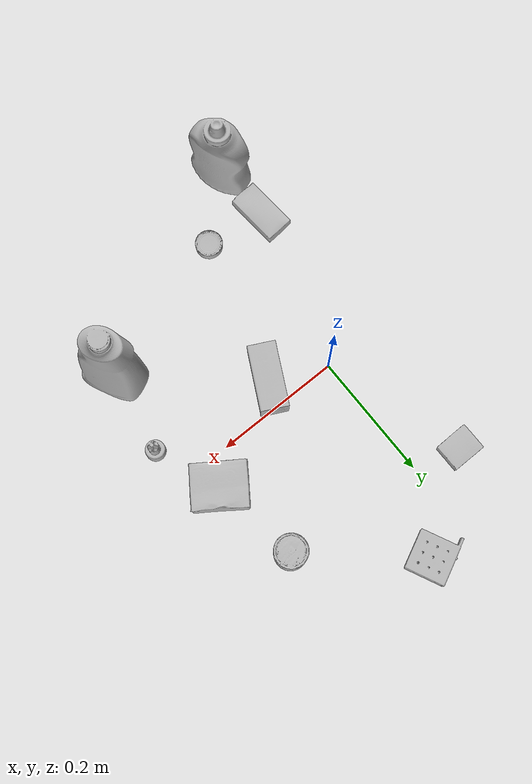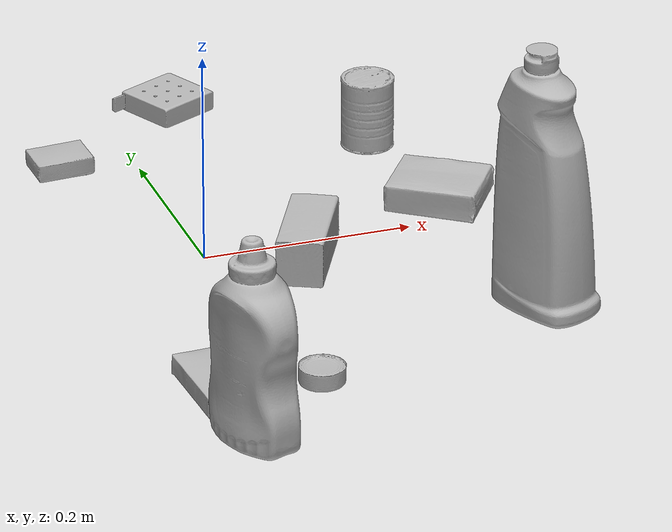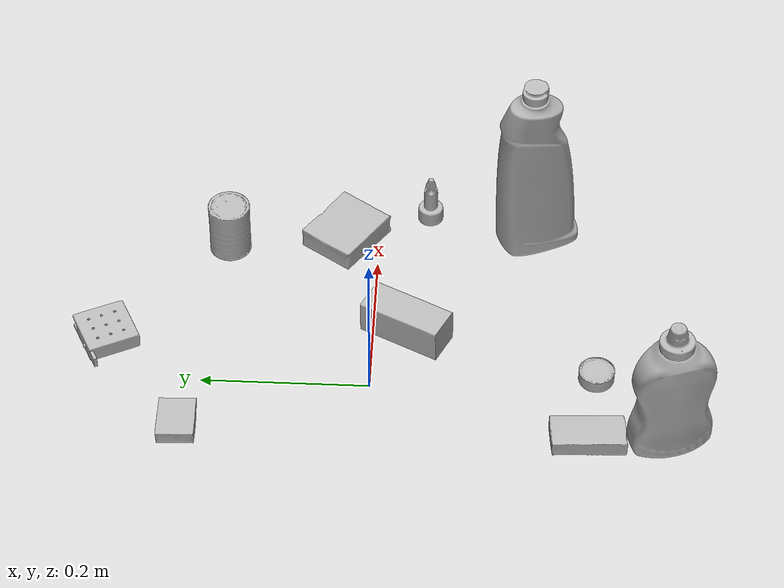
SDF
<sdf version="1.4">
  <world name="default">
    <light name="light1" type="point">
      <pose>0 0 1 0 0 0</pose>
      <diffuse>3 3 3 1</diffuse>
      <specular>3 3 3 1</specular>
    </light>
    <light name="light2" type="point">
      <pose>0 0.5 2 0 0 0</pose>
      <diffuse>1 1 1 1</diffuse>
      <specular>1 1 1 1</specular>
    </light>
    <light name="light3" type="point">
      <pose>0 0.5 2 0 0 0</pose>
      <diffuse>3 3 3 1</diffuse>
      <specular>3 3 3 1</specular>
    </light>
    <scene>
      <ambient>0.7 0.7 0.7</ambient>
    </scene>
    <model name="bottle1">
      <link name="link_bottle1">
        <collision name="default">
          <geometry>
            <mesh>
              <uri>model://mustard_bottle/collision_meshes/collision.obj</uri>
              <scale>1.0 1.0 1.0</scale>
            </mesh>
          </geometry>
          <surface>
            <friction>
              <ode>
                <mu>0.5</mu>
                <mu2>0.5</mu2>
              </ode>
            </friction>
          <contact>
        <ode>
            <max_vel>0</max_vel>
            <min_depth>0.0001</min_depth>
            <kp>1e8</kp>
        </ode>
    </contact></surface>
        </collision>
        <visual name="default">
          <geometry>
            <mesh>
              <uri>model://mustard_bottle/visual_meshes/visual.dae</uri>
              <scale>1.0 1.0 1.0</scale>
            </mesh>
          </geometry>
        </visual>
        <inertial>
          <mass>0.9814921021461487</mass>
          <pose>0.000503245391882956 -0.00015647400869056582 -0.0174757968634367 0.00041823298570721707 0.000946579165099878 0.024853733541460008</pose>
          <inertia>
            <ixx>0.0027254699</ixx>
            <iyy>0.0023913688</iyy>
            <izz>0.0007182988</izz>
            <ixy>0</ixy>
            <ixz>0</ixz>
            <iyz>0</iyz>
          </inertia>
        </inertial>
      </link>
      <pose>-0.0682036504149437 -0.34816011786460876 0.09583090245723724 -0.012050615875184367 -0.004890453943508584 0.29444919038281</pose>
    </model>
    <model name="bottle2">
      <link name="link_bottle2">
        <collision name="default">
          <geometry>
            <mesh>
              <uri>model://bleach_cleanser/collision_meshes/collision.obj</uri>
              <scale>1.0 1.0 1.0</scale>
            </mesh>
          </geometry>
          <surface>
            <friction>
              <ode>
                <mu>0.5</mu>
                <mu2>0.5</mu2>
              </ode>
            </friction>
          <contact>
        <ode>
            <max_vel>0</max_vel>
            <min_depth>0.0001</min_depth>
            <kp>1e8</kp>
        </ode>
    </contact></surface>
        </collision>
        <visual name="default">
          <geometry>
            <mesh>
              <uri>model://bleach_cleanser/visual_meshes/visual.dae</uri>
              <scale>1.0 1.0 1.0</scale>
            </mesh>
          </geometry>
        </visual>
        <inertial>
          <mass>0.5613878965377808</mass>
          <pose>0.00012193182919872925 0.0037838828284293413 -0.02442161738872528 -0.07381670616369514 0.00042011545192634117 -0.006875071107578698</pose>
          <inertia>
            <ixx>0.0027323565</ixx>
            <iyy>0.002546156</iyy>
            <izz>0.0004671619</izz>
            <ixy>0</ixy>
            <ixz>0</ixz>
            <iyz>0</iyz>
          </inertia>
        </inertial>
      </link>
      <pose>0.25931453704833984 -0.19204841554164886 0.12578417360782623 -0.00020007609166773863 1.6695309251403306e-05 0.4402777579146058</pose>
    </model>
    <model name="toy1">
      <link name="link_toy1">
        <collision name="default">
          <geometry>
            <mesh>
              <uri>model://nine_hole_peg_test/collision_meshes/collision.obj</uri>
              <scale>0.5 0.5 0.5</scale>
            </mesh>
          </geometry>
          <surface>
            <friction>
              <ode>
                <mu>0.5</mu>
                <mu2>0.5</mu2>
              </ode>
            </friction>
          <contact>
        <ode>
            <max_vel>0</max_vel>
            <min_depth>0.0001</min_depth>
            <kp>1e8</kp>
        </ode>
    </contact></surface>
        </collision>
        <visual name="default">
          <geometry>
            <mesh>
              <uri>model://nine_hole_peg_test/visual_meshes/visual.dae</uri>
              <scale>0.5 0.5 0.5</scale>
            </mesh>
          </geometry>
        </visual>
        <inertial>
          <mass>0.10001979023218155</mass>
          <pose>-0.002308693015947938 -0.0048238071613013744 1.323034393863054e-05 -0.001466679064329537 0.000719417562538249 -0.6342417933325166</pose>
          <inertia>
            <ixx>3.9099352e-05</ixx>
            <iyy>3.650665e-05</iyy>
            <izz>6.851359e-05</izz>
            <ixy>0</ixy>
            <ixz>0</ixz>
            <iyz>0</iyz>
          </inertia>
        </inertial>
      </link>
      <pose>0.05972374975681305 0.3179706931114197 0.010385501198470592 1.0171338908440577e-08 -1.6901543909187416e-09 2.0279494725118132</pose>
    </model>
    <model name="toy2">
      <link name="link_toy2">
        <collision name="default">
          <geometry>
            <mesh>
              <uri>model://d_toy_airplane/collision_meshes/collision.obj</uri>
              <scale>1.0 1.0 1.0</scale>
            </mesh>
          </geometry>
          <surface>
            <friction>
              <ode>
                <mu>0.5</mu>
                <mu2>0.5</mu2>
              </ode>
            </friction>
          <contact>
        <ode>
            <max_vel>0</max_vel>
            <min_depth>0.0001</min_depth>
            <kp>1e8</kp>
        </ode>
    </contact></surface>
        </collision>
        <visual name="default">
          <geometry>
            <mesh>
              <uri>model://d_toy_airplane/visual_meshes/visual.dae</uri>
              <scale>1.0 1.0 1.0</scale>
            </mesh>
          </geometry>
        </visual>
        <inertial>
          <mass>0.019254321232438087</mass>
          <pose>9.410314669366926e-05 -5.809308640891686e-05 -0.011728096753358841 0.0002669110283705203 0.00467899073598619 0.5194519611142697</pose>
          <inertia>
            <ixx>5.7720713e-06</ixx>
            <iyy>5.776424e-06</iyy>
            <izz>1.7426261e-06</izz>
            <ixy>0</ixy>
            <ixz>0</ixz>
            <iyz>0</iyz>
          </inertia>
        </inertial>
      </link>
      <pose>0.2846885323524475 -0.061841897666454315 0.033338893204927444 0.00024308672039334897 -9.167632599811265e-05 -3.0045179476069146</pose>
    </model>
    <model name="can1">
      <link name="link_can1">
        <collision name="default">
          <geometry>
            <mesh>
              <uri>model://master_chef_can/collision_meshes/collision.obj</uri>
              <scale>0.5 0.5 0.5</scale>
            </mesh>
          </geometry>
          <surface>
            <friction>
              <ode>
                <mu>0.5</mu>
                <mu2>0.5</mu2>
              </ode>
            </friction>
          <contact>
        <ode>
            <max_vel>0</max_vel>
            <min_depth>0.0001</min_depth>
            <kp>1e8</kp>
        </ode>
    </contact></surface>
        </collision>
        <visual name="default">
          <geometry>
            <mesh>
              <uri>model://master_chef_can/visual_meshes/visual.dae</uri>
              <scale>0.5 0.5 0.5</scale>
            </mesh>
          </geometry>
        </visual>
        <inertial>
          <mass>0.11909646540880203</mass>
          <pose>-4.661963976104744e-05 1.3926845099376806e-07 -5.07990553160198e-05 -0.0017995128948922 0.0006479239957886283 -0.6102624789319168</pose>
          <inertia>
            <ixx>6.990155e-05</ixx>
            <iyy>6.938709e-05</iyy>
            <izz>3.8625953e-05</izz>
            <ixy>0</ixy>
            <ixz>0</ixz>
            <iyz>0</iyz>
          </inertia>
        </inertial>
      </link>
      <pose>0.22286392748355865 0.18265442550182343 0.03530200198292732 -1.4338304141798526e-06 -1.031478145593648e-06 0.8436856560287788</pose>
    </model>
    <model name="can2">
      <link name="link_can2">
        <collision name="default">
          <geometry>
            <mesh>
              <uri>model://tuna_fish_can/collision_meshes/collision.obj</uri>
              <scale>0.5 0.5 0.5</scale>
            </mesh>
          </geometry>
          <surface>
            <friction>
              <ode>
                <mu>0.5</mu>
                <mu2>0.5</mu2>
              </ode>
            </friction>
          <contact>
        <ode>
            <max_vel>0</max_vel>
            <min_depth>0.0001</min_depth>
            <kp>1e8</kp>
        </ode>
    </contact></surface>
        </collision>
        <visual name="default">
          <geometry>
            <mesh>
              <uri>model://tuna_fish_can/visual_meshes/visual.dae</uri>
              <scale>0.5 0.5 0.5</scale>
            </mesh>
          </geometry>
        </visual>
        <inertial>
          <mass>0.019333453848958015</mass>
          <pose>-2.0361452698125504e-05 -7.256490789586678e-06 -0.0005269024986773729 -0.0017944786606280685 0.0001716327651594619 0.24054823336333434</pose>
          <inertia>
            <ixx>2.6139116e-06</ixx>
            <iyy>2.6030175e-06</iyy>
            <izz>4.4727767e-06</izz>
            <ixy>0</ixy>
            <ixz>0</ixz>
            <iyz>0</iyz>
          </inertia>
        </inertial>
      </link>
      <pose>0.022642463445663452 -0.26616522669792175 0.008520000614225864 3.1665245407393196e-08 -9.714311821813526e-09 -0.44268638410242034</pose>
    </model>
    <model name="box1">
      <link name="link_box1">
        <collision name="default">
          <geometry>
            <mesh>
              <uri>model://sugar_box/collision_meshes/collision.obj</uri>
              <scale>0.5 0.5 0.5</scale>
            </mesh>
          </geometry>
          <surface>
            <friction>
              <ode>
                <mu>0.5</mu>
                <mu2>0.5</mu2>
              </ode>
            </friction>
          <contact>
        <ode>
            <max_vel>0</max_vel>
            <min_depth>0.0001</min_depth>
            <kp>1e8</kp>
        </ode>
    </contact></surface>
        </collision>
        <visual name="default">
          <geometry>
            <mesh>
              <uri>model://sugar_box/visual_meshes/visual.dae</uri>
              <scale>0.5 0.5 0.5</scale>
            </mesh>
          </geometry>
        </visual>
        <inertial>
          <mass>0.11277332901954651</mass>
          <pose>0.0005171863595023751 1.924554817378521e-05 -0.0001818240125430748 -0.00040462603870476286 0.0010506635217257978 0.002615378323397263</pose>
          <inertia>
            <ixx>2.34906e-05</ixx>
            <iyy>7.592646e-05</iyy>
            <izz>9.089305e-05</izz>
            <ixy>0</ixy>
            <ixz>0</ixz>
            <iyz>0</iyz>
          </inertia>
        </inertial>
      </link>
      <pose>-0.07369090616703033 -0.2558530271053314 0.011399304494261742 0.0007745169804263949 -0.023433031894530422 1.6383858258126358</pose>
    </model>
    <model name="box2">
      <link name="link_box2">
        <collision name="default">
          <geometry>
            <mesh>
              <uri>model://gelatin_box/collision_meshes/collision.obj</uri>
              <scale>1.0 1.0 1.0</scale>
            </mesh>
          </geometry>
          <surface>
            <friction>
              <ode>
                <mu>0.5</mu>
                <mu2>0.5</mu2>
              </ode>
            </friction>
          <contact>
        <ode>
            <max_vel>0</max_vel>
            <min_depth>0.0001</min_depth>
            <kp>1e8</kp>
        </ode>
    </contact></surface>
        </collision>
        <visual name="default">
          <geometry>
            <mesh>
              <uri>model://gelatin_box/visual_meshes/visual.dae</uri>
              <scale>1.0 1.0 1.0</scale>
            </mesh>
          </geometry>
        </visual>
        <inertial>
          <mass>0.18825438618659973</mass>
          <pose>0.0004319618456065655 0.00011156871914863586 -0.0003640321083366871 -0.0010503720853528096 -0.004755817758068365 0.016440559471334753</pose>
          <inertia>
            <ixx>0.00013289225</ixx>
            <iyy>9.492423e-05</iyy>
            <izz>0.0002022916</izz>
            <ixy>0</ixy>
            <ixz>0</ixz>
            <iyz>0</iyz>
          </inertia>
        </inertial>
      </link>
      <pose>0.24351100623607635 0.04042553901672363 0.015168317593634129 0.00559745237905216 -0.007304570571368135 0.959779512152823</pose>
    </model>
    <model name="box3">
      <link name="link_box3">
        <collision name="default">
          <geometry>
            <mesh>
              <uri>model://wood_block/collision_meshes/collision.obj</uri>
              <scale>0.5 0.5 0.5</scale>
            </mesh>
          </geometry>
          <surface>
            <friction>
              <ode>
                <mu>0.5</mu>
                <mu2>0.5</mu2>
              </ode>
            </friction>
          <contact>
        <ode>
            <max_vel>0</max_vel>
            <min_depth>0.0001</min_depth>
            <kp>1e8</kp>
        </ode>
    </contact></surface>
        </collision>
        <visual name="default">
          <geometry>
            <mesh>
              <uri>model://wood_block/visual_meshes/visual.dae</uri>
              <scale>0.5 0.5 0.5</scale>
            </mesh>
          </geometry>
        </visual>
        <inertial>
          <mass>0.16905224323272705</mass>
          <pose>-2.906657982748584e-06 -0.00028540476341731846 0.00013204291462898254 -0.05220975529285028 -0.0051926941753174345 -0.0068613788950967446</pose>
          <inertia>
            <ixx>5.655437e-05</ixx>
            <iyy>0.00017865526</iyy>
            <izz>0.00017798702</izz>
            <ixy>0</ixy>
            <ixz>0</ixz>
            <iyz>0</iyz>
          </inertia>
        </inertial>
      </link>
      <pose>0.08633213490247726 -0.039430055767297745 0.022629264742136 -0.005208535656310138 0.005718733005465576 1.104025617746376</pose>
    </model>
    <model name="box4">
      <link name="link_box4">
        <collision name="default">
          <geometry>
            <mesh>
              <uri>model://pudding_box/collision_meshes/collision.obj</uri>
              <scale>0.5 0.5 0.5</scale>
            </mesh>
          </geometry>
          <surface>
            <friction>
              <ode>
                <mu>0.5</mu>
                <mu2>0.5</mu2>
              </ode>
            </friction>
          <contact>
        <ode>
            <max_vel>0</max_vel>
            <min_depth>0.0001</min_depth>
            <kp>1e8</kp>
        </ode>
    </contact></surface>
        </collision>
        <visual name="default">
          <geometry>
            <mesh>
              <uri>model://pudding_box/visual_meshes/visual.dae</uri>
              <scale>0.5 0.5 0.5</scale>
            </mesh>
          </geometry>
        </visual>
        <inertial>
          <mass>0.04372405260801315</mass>
          <pose>0.00024474109522998333 0.00040339428232982755 -0.00025944135268218815 0.005213099923843092 -0.006603798704775496 0.02007982702870814</pose>
          <inertia>
            <ixx>1.2356946e-05</ixx>
            <iyy>8.313842e-06</iyy>
            <izz>1.8248264e-05</izz>
            <ixy>0</ixy>
            <ixz>0</ixz>
            <iyz>0</iyz>
          </inertia>
        </inertial>
      </link>
      <pose>-0.0720527246594429 0.2208799123764038 0.009862900711596012 0.022349593593699205 -0.011390921583751351 -1.5620415715792788</pose>
    </model>
  <physics type="ode">
      <max_contacts>50</max_contacts>
      <ode>
        <solver>
          <type>quick</type>
          <iters>75</iters>
        </solver>
        <constraints>
          <contact_max_correcting_vel>0</contact_max_correcting_vel>
          <contact_surface_layer>0</contact_surface_layer>
        </constraints>
      </ode>
    </physics></world>
</sdf>
